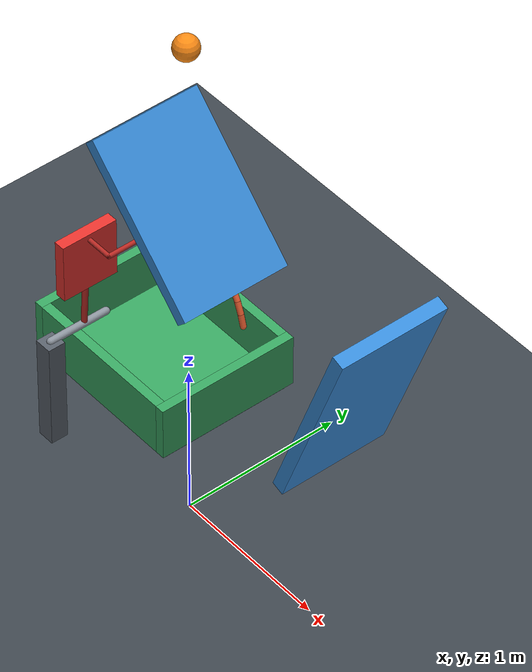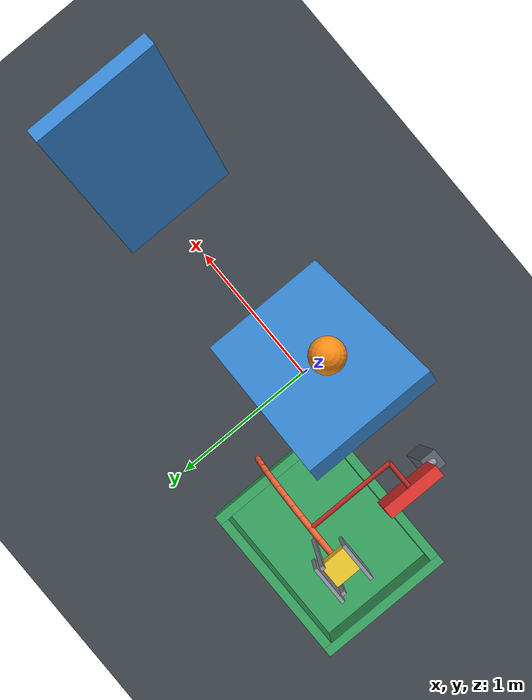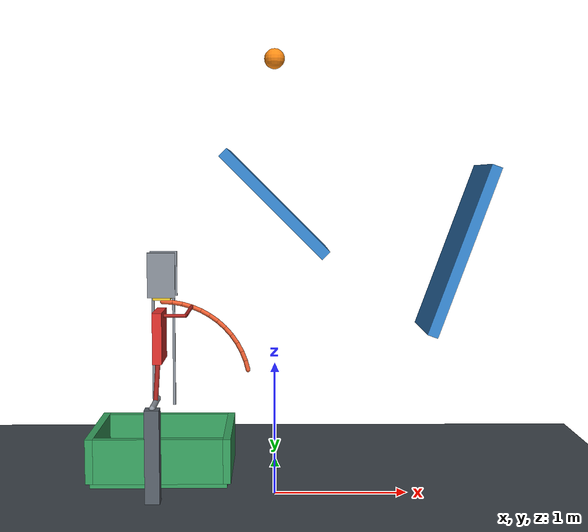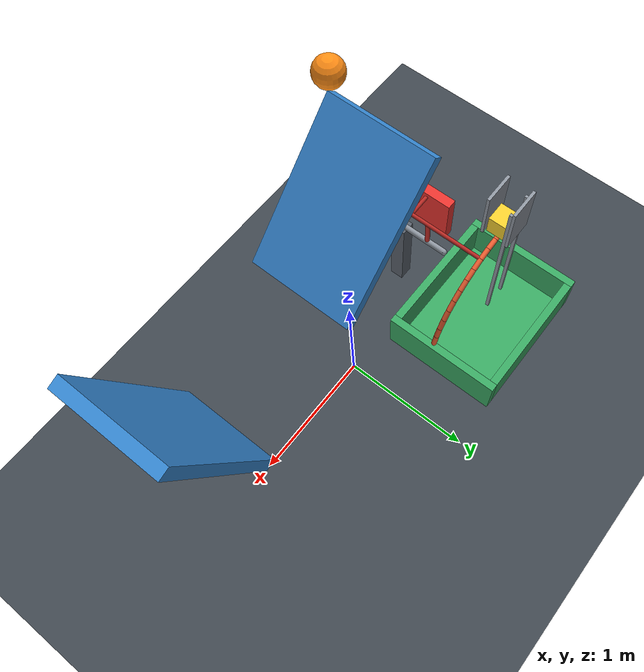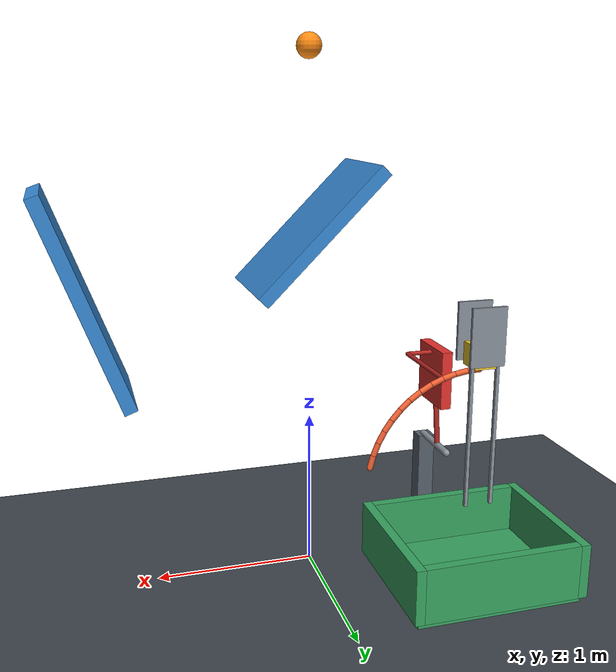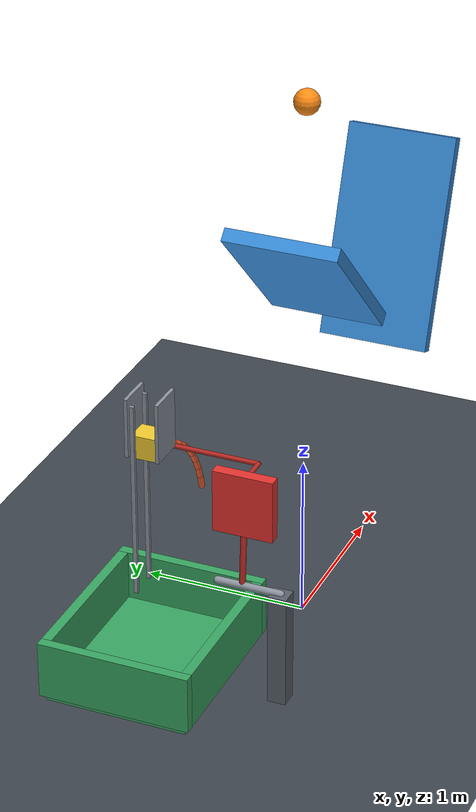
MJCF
<mujoco model="ricochet_cam_release">
  <compiler angle="degree" autolimits="true"/>
  <option timestep="0.002" gravity="0 0 -9.81" integrator="implicitfast" solver="Newton" iterations="100" tolerance="1e-10"/>
  <size njmax="3000" nconmax="500"/>
  <visual>
    <global azimuth="135" elevation="-20"/>
  </visual>

  <worldbody>
    <light name="overhead_light" pos="0 -2 6" dir="0 0 -1" diffuse="0.8 0.8 0.8"/>
    <camera name="overview" pos="4 -7 3.6" xyaxes="0.868 0.496 0 -0.168 0.294 0.941"/>

    <geom name="floor" type="plane" pos="0 0 0" size="6 4 0.1" condim="6" friction="0.9 0.08 0.025" priority="1" solref="0.015 1" solimp="0.95 0.99 0.001" rgba="0.24 0.27 0.30 1"/>

    <!-- The ball begins exactly one metre above wall1's upper surface at x=0. -->
    <body name="ball" pos="0 0 3.256568">
      <freejoint name="ball_free"/>
      <geom name="ball_sphere" type="sphere" size="0.075" mass="0.22" condim="6" friction="0.6 0.04 0.02" solref="0.015 1" rgba="1 0.55 0.08 1"/>
    </body>

    <!-- Low-loss angled contacts produce the two ricochets. -->
    <body name="wall1" pos="0 0 2.2">
      <geom name="wall1_plate" type="box" euler="0 45 0" size="0.52 0.34 0.04" friction="0.002 0.0001 0.0001" priority="3" solref="-20000 -2" solimp="0.99 0.99 0.001" rgba="0.22 0.55 0.85 1"/>
    </body>

    <body name="wall2" pos="1.3581 0 1.8607">
      <geom name="wall2_plate" type="box" euler="0 -70 0" size="0.65 0.34 0.04" friction="0.002 0.0001 0.0001" priority="3" solref="-20000 -2" solimp="0.99 0.99 0.001" rgba="0.22 0.55 0.85 1"/>
    </body>

    <body name="hinge_mount" pos="-0.9 -0.23 0.35">
      <geom name="hinge_mount_post" type="box" size="0.055 0.055 0.35" rgba="0.35 0.38 0.42 1"/>
      <geom name="hinge_mount_axle" type="capsule" fromto="0 0 0.35 0 0.38 0.35" size="0.023" contype="0" conaffinity="0" rgba="0.55 0.58 0.62 1"/>
    </body>

    <body name="target" pos="-0.9 0 0.7">
      <joint name="target_hinge" type="hinge" axis="0 1 0" range="-87.09 0" damping="0.25" armature="0.004" limited="true" solreflimit="0.006 1" solimplimit="0.99 0.99 0.001"/>
      <geom name="target_paddle" type="box" pos="0.035 0 0.51" size="0.035 0.18 0.19" mass="0.12" friction="0.3 0.005 0.001" priority="2" solref="0.01 1" rgba="0.9 0.2 0.18 1"/>
      <geom name="target_stem" type="capsule" fromto="0 0 0 0.035 0 0.51" size="0.018" mass="0.025" friction="0.3 0.005 0.001" rgba="0.72 0.16 0.14 1"/>
      <geom name="target_brace" type="capsule" fromto="0.035 0 0.66 0.23344 0 0.65993" size="0.014" mass="0.008" friction="0.03 0.001 0.001" rgba="0.72 0.16 0.14 1"/>
      <geom name="target_crossbar" type="capsule" fromto="0.23344 0 0.65993 0.23344 0.55 0.65993" size="0.014" mass="0.012" friction="0.03 0.001 0.001" rgba="0.72 0.16 0.14 1"/>

      <geom name="target_cam_01" type="capsule" fromto="0 0.55 0.7 0.07916 0.55 0.69551" size="0.018" mass="0.0015" friction="0.01 0.001 0.001" solref="0.006 1" rgba="0.95 0.38 0.2 1"/>
      <geom name="target_cam_02" type="capsule" fromto="0.07916 0.55 0.69551 0.15731 0.55 0.68210" size="0.018" mass="0.0015" friction="0.01 0.001 0.001" solref="0.006 1" rgba="0.95 0.38 0.2 1"/>
      <geom name="target_cam_03" type="capsule" fromto="0.15731 0.55 0.68210 0.23344 0.55 0.65993" size="0.018" mass="0.0015" friction="0.01 0.001 0.001" solref="0.006 1" rgba="0.95 0.38 0.2 1"/>
      <geom name="target_cam_04" type="capsule" fromto="0.23344 0.55 0.65993 0.30659 0.55 0.62930" size="0.018" mass="0.0015" friction="0.01 0.001 0.001" solref="0.006 1" rgba="0.95 0.38 0.2 1"/>
      <geom name="target_cam_05" type="capsule" fromto="0.30659 0.55 0.62930 0.37576 0.55 0.59060" size="0.018" mass="0.0015" friction="0.01 0.001 0.001" solref="0.006 1" rgba="0.95 0.38 0.2 1"/>
      <geom name="target_cam_06" type="capsule" fromto="0.37576 0.55 0.59060 0.44017 0.55 0.54430" size="0.018" mass="0.0015" friction="0.01 0.001 0.001" solref="0.006 1" rgba="0.95 0.38 0.2 1"/>
      <geom name="target_cam_07" type="capsule" fromto="0.44017 0.55 0.54430 0.49882 0.55 0.49112" size="0.018" mass="0.0015" friction="0.01 0.001 0.001" solref="0.006 1" rgba="0.95 0.38 0.2 1"/>
      <geom name="target_cam_08" type="capsule" fromto="0.49882 0.55 0.49112 0.55133 0.55 0.43146" size="0.018" mass="0.0015" friction="0.01 0.001 0.001" solref="0.006 1" rgba="0.95 0.38 0.2 1"/>
      <geom name="target_cam_09" type="capsule" fromto="0.55133 0.55 0.43146 0.59648 0.55 0.36634" size="0.018" mass="0.0015" friction="0.01 0.001 0.001" solref="0.006 1" rgba="0.95 0.38 0.2 1"/>
      <geom name="target_cam_10" type="capsule" fromto="0.59648 0.55 0.36634 0.63407 0.55 0.29655" size="0.018" mass="0.0015" friction="0.01 0.001 0.001" solref="0.006 1" rgba="0.95 0.38 0.2 1"/>
      <geom name="target_cam_11" type="capsule" fromto="0.63407 0.55 0.29655 0.66354 0.55 0.22294" size="0.018" mass="0.0015" friction="0.01 0.001 0.001" solref="0.006 1" rgba="0.95 0.38 0.2 1"/>
      <geom name="target_cam_12" type="capsule" fromto="0.66354 0.55 0.22294 0.68450 0.55 0.14642" size="0.018" mass="0.0015" friction="0.01 0.001 0.001" solref="0.006 1" rgba="0.95 0.38 0.2 1"/>
    </body>

    <!-- Slotted stationary guides leave the cam and crossbar unobstructed. -->
    <body name="payload_guide" pos="-0.9 0.55 0">
      <geom name="payload_guide_left" type="box" pos="-0.083 0.065 1.15" size="0.01 0.012 0.60" friction="0.015 0.001 0.001" solref="0.008 1" rgba="0.55 0.58 0.62 1"/>
      <geom name="payload_guide_right" type="box" pos="0.083 0.065 1.15" size="0.01 0.012 0.60" friction="0.015 0.001 0.001" solref="0.008 1" rgba="0.55 0.58 0.62 1"/>
      <geom name="payload_guide_front" type="box" pos="0 -0.092 1.62" size="0.11 0.01 0.18" friction="0.015 0.001 0.001" solref="0.008 1" rgba="0.55 0.58 0.62 1"/>
      <geom name="payload_guide_back" type="box" pos="0 0.092 1.62" size="0.11 0.01 0.18" friction="0.015 0.001 0.001" solref="0.008 1" rgba="0.55 0.58 0.62 1"/>
    </body>

    <body name="block" pos="-0.9 0.55 1.49">
      <freejoint name="block_free"/>
      <geom name="block_payload" type="box" size="0.07 0.08 0.07" mass="0.08" condim="6" friction="0.015 0.001 0.001" solref="0.008 1" rgba="0.95 0.8 0.18 1"/>
    </body>

    <body name="bin" pos="-0.9 0.55 0">
      <geom name="bin_bottom" type="box" pos="0 0 0.04" size="0.53 0.43 0.04" condim="6" friction="0.9 0.03 0.01" priority="1" solref="0.015 1" rgba="0.22 0.65 0.38 1"/>
      <geom name="bin_left" type="box" pos="-0.53 0 0.215" size="0.03 0.46 0.175" friction="0.8 0.02 0.01" solref="0.015 1" rgba="0.22 0.65 0.38 1"/>
      <geom name="bin_right" type="box" pos="0.53 0 0.215" size="0.03 0.46 0.175" friction="0.8 0.02 0.01" solref="0.015 1" rgba="0.22 0.65 0.38 1"/>
      <geom name="bin_front" type="box" pos="0 -0.43 0.215" size="0.50 0.03 0.175" friction="0.8 0.02 0.01" solref="0.015 1" rgba="0.22 0.65 0.38 1"/>
      <geom name="bin_back" type="box" pos="0 0.43 0.215" size="0.50 0.03 0.175" friction="0.8 0.02 0.01" solref="0.015 1" rgba="0.22 0.65 0.38 1"/>
    </body>
  </worldbody>

  <keyframe>
    <key name="start" qpos="0 0 3.256568 1 0 0 0 0 -0.9 0.55 1.49 1 0 0 0" qvel="0 0 0 0 0 0 0 0 0 0 0 0 0"/>
  </keyframe>
</mujoco>
